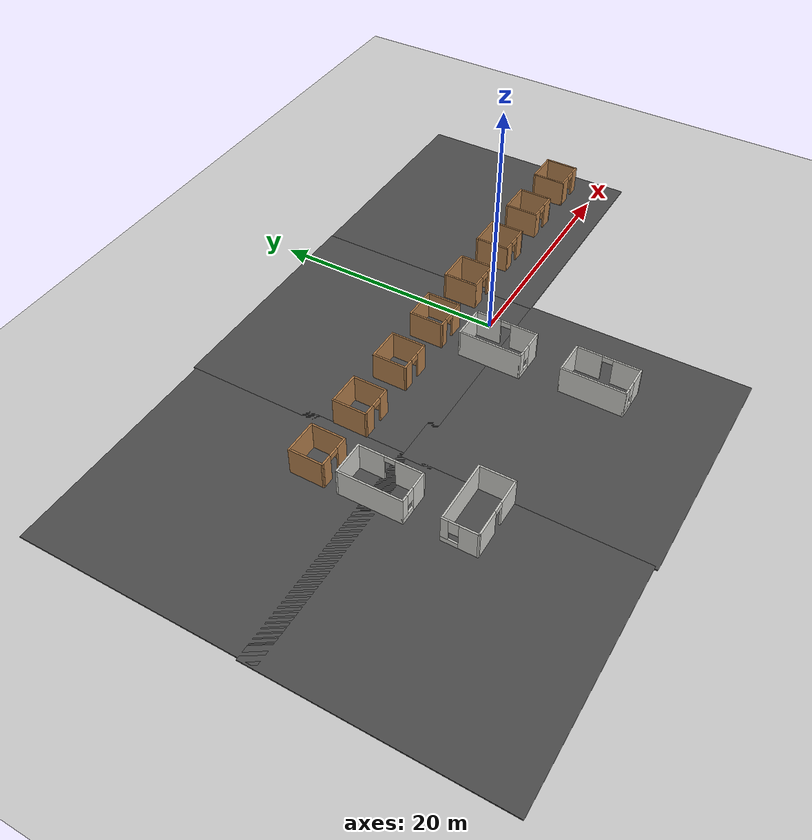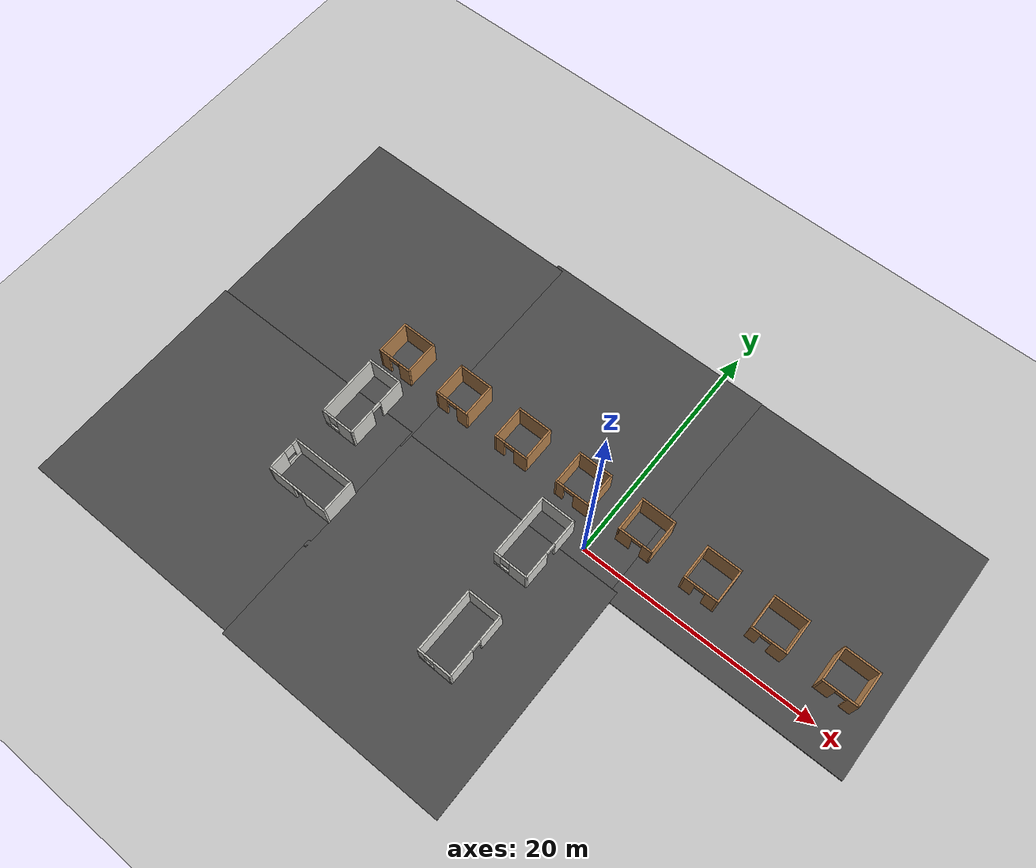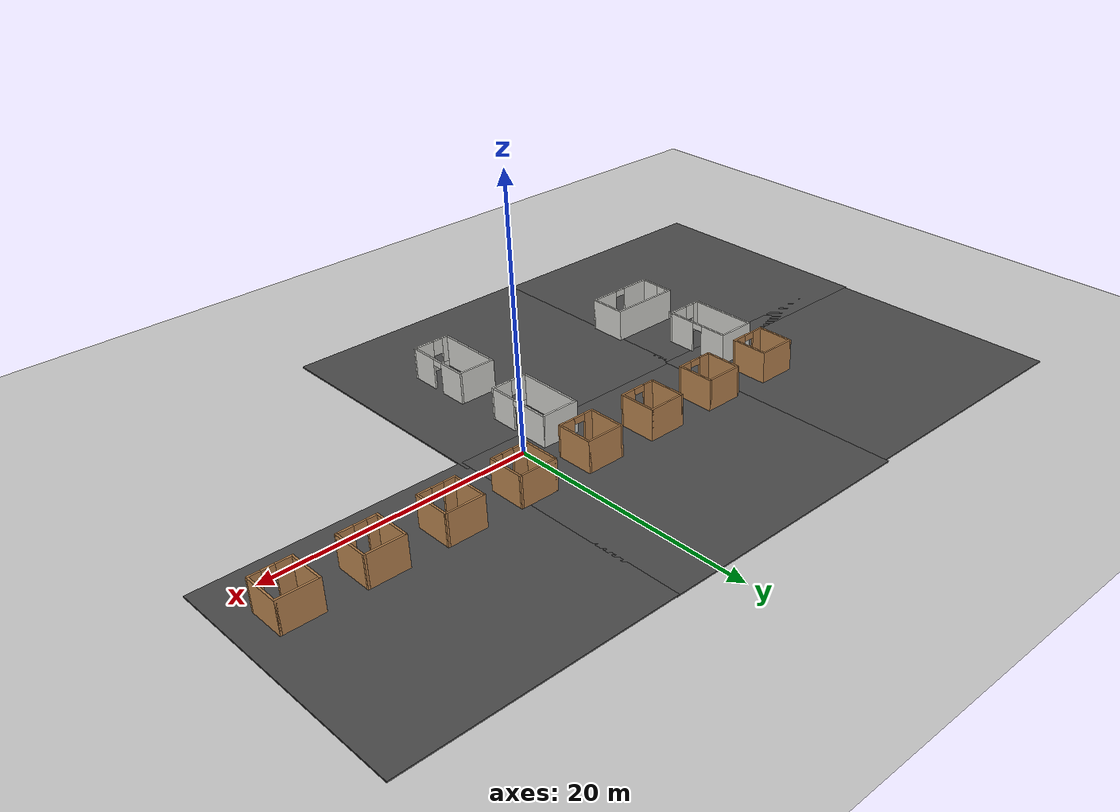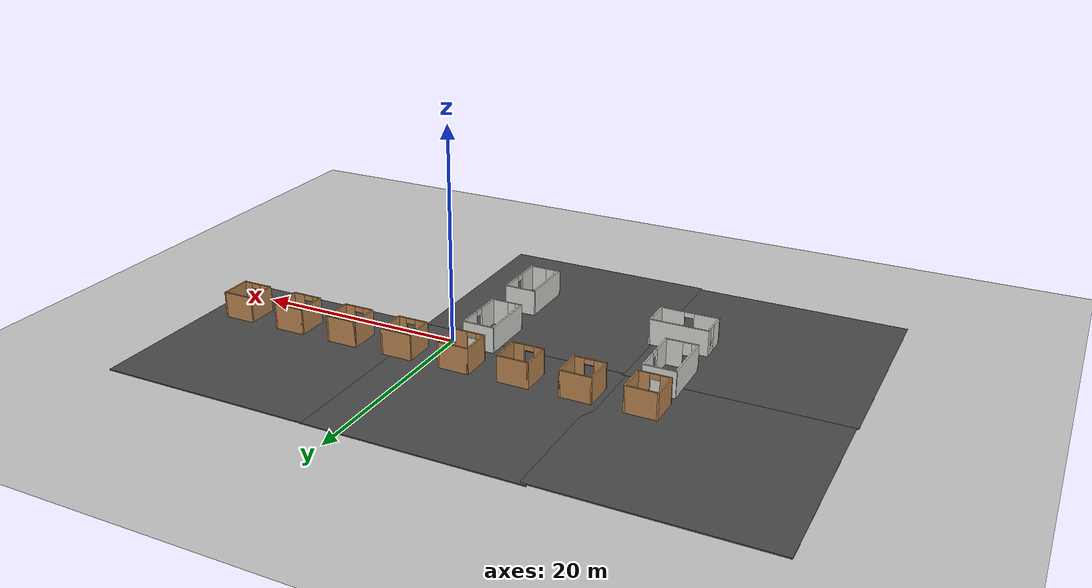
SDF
<sdf version="1.6">
 <world name="default">
  <model name="ground_plane">
   <static>1</static>
   <link name="link">
    <collision name="collision">
     <geometry><plane><normal>0 0 1</normal><size>100 100</size></plane></geometry>
     <surface>
      <contact><collide_bitmask>65535</collide_bitmask></contact>
      <friction><ode><mu>100</mu><mu2>50</mu2></ode></friction>
     </surface>
    </collision>
    <visual name="visual">
     <cast_shadows>0</cast_shadows>
     <geometry><plane><normal>0 0 1</normal><size>100 100</size></plane></geometry>
     <material>
      <script><uri>file://media/materials/scripts/gazebo.material</uri><name>Gazebo/Grey</name></script>
     </material>
    </visual>
   </link>
  </model>
  <model name="room_row_clone_clone_0">
   <pose>-0.049292 3.57608 0 0 -0 3.14</pose>
   <link name="Wall_11">
    <collision name="Wall_11_Collision">
     <geometry><box><size>3 0.15 2.5</size></box></geometry>
     <pose>0 0 1.25 0 -0 0</pose>
    </collision>
    <visual name="Wall_11_Visual">
     <pose>0 0 1.25 0 -0 0</pose>
     <geometry><box><size>3 0.15 2.5</size></box></geometry>
     <material>
      <script><uri>file://media/materials/scripts/gazebo.material</uri><name>Gazebo/Wood</name></script>
      <ambient>1 1 1 1</ambient>
     </material>
     <meta><layer>0</layer></meta>
    </visual>
    <pose>1.425 0 0 0 -0 -1.5708</pose>
   </link>
   <link name="Wall_12">
    <collision name="Wall_12_Collision">
     <geometry><box><size>3 0.15 2.5</size></box></geometry>
     <pose>0 0 1.25 0 -0 0</pose>
    </collision>
    <visual name="Wall_12_Visual">
     <pose>0 0 1.25 0 -0 0</pose>
     <geometry><box><size>3 0.15 2.5</size></box></geometry>
     <material>
      <script><uri>file://media/materials/scripts/gazebo.material</uri><name>Gazebo/Wood</name></script>
      <ambient>1 1 1 1</ambient>
     </material>
     <meta><layer>0</layer></meta>
    </visual>
    <pose>2.85 -1.425 0 0 -0 0</pose>
   </link>
   <link name="Wall_13">
    <collision name="Wall_13_Collision">
     <geometry><box><size>3 0.15 2.5</size></box></geometry>
     <pose>0 0 1.25 0 -0 0</pose>
    </collision>
    <visual name="Wall_13_Visual">
     <pose>0 0 1.25 0 -0 0</pose>
     <geometry><box><size>3 0.15 2.5</size></box></geometry>
     <material>
      <script><uri>file://media/materials/scripts/gazebo.material</uri><name>Gazebo/Wood</name></script>
      <ambient>1 1 1 1</ambient>
     </material>
     <meta><layer>0</layer></meta>
    </visual>
    <pose>4.275 0 0 0 -0 1.5708</pose>
   </link>
   <link name="Wall_14">
    <pose>2.85 1.425 0 0 -0 3.14159</pose>
    <visual name="Wall_14_Visual_0">
     <pose>-1.10207 0 1.25 0 -0 0</pose>
     <geometry><box><size>0.795857 0.15 2.5</size></box></geometry>
     <material>
      <script><uri>file://media/materials/scripts/gazebo.material</uri><name>Gazebo/Wood</name></script>
      <ambient>1 1 1 1</ambient>
     </material>
     <meta><layer>0</layer></meta>
    </visual>
    <collision name="Wall_14_Collision_0">
     <geometry><box><size>0.795857 0.15 2.5</size></box></geometry>
     <pose>-1.10207 0 1.25 0 -0 0</pose>
    </collision>
    <visual name="Wall_14_Visual_1">
     <pose>0.847928 0 1.25 0 -0 0</pose>
     <geometry><box><size>1.30414 0.15 2.5</size></box></geometry>
     <material>
      <script><uri>file://media/materials/scripts/gazebo.material</uri><name>Gazebo/Wood</name></script>
      <ambient>1 1 1 1</ambient>
     </material>
     <meta><layer>0</layer></meta>
    </visual>
    <collision name="Wall_14_Collision_1">
     <geometry><box><size>1.30414 0.15 2.5</size></box></geometry>
     <pose>0.847928 0 1.25 0 -0 0</pose>
    </collision>
    <visual name="Wall_14_Visual_2">
     <pose>-0.254143 0 2.25 0 -0 0</pose>
     <geometry><box><size>0.9 0.15 0.5</size></box></geometry>
     <material>
      <script><uri>file://media/materials/scripts/gazebo.material</uri><name>Gazebo/Wood</name></script>
      <ambient>1 1 1 1</ambient>
     </material>
     <meta><layer>0</layer></meta>
    </visual>
    <collision name="Wall_14_Collision_2">
     <geometry><box><size>0.9 0.15 0.5</size></box></geometry>
     <pose>-0.254143 0 2.25 0 -0 0</pose>
    </collision>
   </link>
   <link name="Wall_17">
    <collision name="Wall_17_Collision">
     <geometry><box><size>3 0.15 2.5</size></box></geometry>
     <pose>0 0 1.25 0 -0 0</pose>
    </collision>
    <visual name="Wall_17_Visual">
     <pose>0 0 1.25 0 -0 0</pose>
     <geometry><box><size>3 0.15 2.5</size></box></geometry>
     <material>
      <script><uri>file://media/materials/scripts/gazebo.material</uri><name>Gazebo/Wood</name></script>
      <ambient>1 1 1 1</ambient>
     </material>
     <meta><layer>0</layer></meta>
    </visual>
    <pose>7.125 0 0 0 -0 -1.5708</pose>
   </link>
   <link name="Wall_18">
    <collision name="Wall_18_Collision">
     <geometry><box><size>3 0.15 2.5</size></box></geometry>
     <pose>0 0 1.25 0 -0 0</pose>
    </collision>
    <visual name="Wall_18_Visual">
     <pose>0 0 1.25 0 -0 0</pose>
     <geometry><box><size>3 0.15 2.5</size></box></geometry>
     <material>
      <script><uri>file://media/materials/scripts/gazebo.material</uri><name>Gazebo/Wood</name></script>
      <ambient>1 1 1 1</ambient>
     </material>
     <meta><layer>0</layer></meta>
    </visual>
    <pose>8.55 -1.425 0 0 -0 0</pose>
   </link>
   <link name="Wall_19">
    <collision name="Wall_19_Collision">
     <geometry><box><size>3 0.15 2.5</size></box></geometry>
     <pose>0 0 1.25 0 -0 0</pose>
    </collision>
    <visual name="Wall_19_Visual">
     <pose>0 0 1.25 0 -0 0</pose>
     <geometry><box><size>3 0.15 2.5</size></box></geometry>
     <material>
      <script><uri>file://media/materials/scripts/gazebo.material</uri><name>Gazebo/Wood</name></script>
      <ambient>1 1 1 1</ambient>
     </material>
     <meta><layer>0</layer></meta>
    </visual>
    <pose>9.975 0 0 0 -0 1.5708</pose>
   </link>
   <link name="Wall_20">
    <pose>8.55 1.425 0 0 -0 3.14159</pose>
    <visual name="Wall_20_Visual_0">
     <pose>-1.03119 0 1.25 0 -0 0</pose>
     <geometry><box><size>0.937612 0.15 2.5</size></box></geometry>
     <material>
      <script><uri>file://media/materials/scripts/gazebo.material</uri><name>Gazebo/Wood</name></script>
      <ambient>1 1 1 1</ambient>
     </material>
     <meta><layer>0</layer></meta>
    </visual>
    <collision name="Wall_20_Collision_0">
     <geometry><box><size>0.937612 0.15 2.5</size></box></geometry>
     <pose>-1.03119 0 1.25 0 -0 0</pose>
    </collision>
    <visual name="Wall_20_Visual_1">
     <pose>0.918806 0 1.25 0 -0 0</pose>
     <geometry><box><size>1.16239 0.15 2.5</size></box></geometry>
     <material>
      <script><uri>file://media/materials/scripts/gazebo.material</uri><name>Gazebo/Wood</name></script>
      <ambient>1 1 1 1</ambient>
     </material>
     <meta><layer>0</layer></meta>
    </visual>
    <collision name="Wall_20_Collision_1">
     <geometry><box><size>1.16239 0.15 2.5</size></box></geometry>
     <pose>0.918806 0 1.25 0 -0 0</pose>
    </collision>
    <visual name="Wall_20_Visual_2">
     <pose>-0.112388 0 2.25 0 -0 0</pose>
     <geometry><box><size>0.9 0.15 0.5</size></box></geometry>
     <material>
      <script><uri>file://media/materials/scripts/gazebo.material</uri><name>Gazebo/Wood</name></script>
      <ambient>1 1 1 1</ambient>
     </material>
     <meta><layer>0</layer></meta>
    </visual>
    <collision name="Wall_20_Collision_2">
     <geometry><box><size>0.9 0.15 0.5</size></box></geometry>
     <pose>-0.112388 0 2.25 0 -0 0</pose>
    </collision>
   </link>
   <link name="Wall_23">
    <collision name="Wall_23_Collision">
     <geometry><box><size>3 0.15 2.5</size></box></geometry>
     <pose>0 0 1.25 0 -0 0</pose>
    </collision>
    <visual name="Wall_23_Visual">
     <pose>0 0 1.25 0 -0 0</pose>
     <geometry><box><size>3 0.15 2.5</size></box></geometry>
     <material>
      <script><uri>file://media/materials/scripts/gazebo.material</uri><name>Gazebo/Wood</name></script>
      <ambient>1 1 1 1</ambient>
     </material>
     <meta><layer>0</layer></meta>
    </visual>
    <pose>-7.125 0 0 0 -0 -1.5708</pose>
   </link>
   <link name="Wall_24">
    <collision name="Wall_24_Collision">
     <geometry><box><size>3 0.15 2.5</size></box></geometry>
     <pose>0 0 1.25 0 -0 0</pose>
    </collision>
    <visual name="Wall_24_Visual">
     <pose>0 0 1.25 0 -0 0</pose>
     <geometry><box><size>3 0.15 2.5</size></box></geometry>
     <material>
      <script><uri>file://media/materials/scripts/gazebo.material</uri><name>Gazebo/Wood</name></script>
      <ambient>1 1 1 1</ambient>
     </material>
     <meta><layer>0</layer></meta>
    </visual>
    <pose>-8.55 -1.425 0 0 -0 3.14159</pose>
   </link>
   <link name="Wall_25">
    <collision name="Wall_25_Collision">
     <geometry><box><size>3 0.15 2.5</size></box></geometry>
     <pose>0 0 1.25 0 -0 0</pose>
    </collision>
    <visual name="Wall_25_Visual">
     <pose>0 0 1.25 0 -0 0</pose>
     <geometry><box><size>3 0.15 2.5</size></box></geometry>
     <material>
      <script><uri>file://media/materials/scripts/gazebo.material</uri><name>Gazebo/Wood</name></script>
      <ambient>1 1 1 1</ambient>
     </material>
     <meta><layer>0</layer></meta>
    </visual>
    <pose>-9.975 0 0 0 -0 1.5708</pose>
   </link>
   <link name="Wall_26">
    <pose>-8.55 1.425 0 0 -0 0</pose>
    <visual name="Wall_26_Visual_0">
     <pose>-0.952424 0 1.25 0 -0 0</pose>
     <geometry><box><size>1.09515 0.15 2.5</size></box></geometry>
     <material>
      <script><uri>file://media/materials/scripts/gazebo.material</uri><name>Gazebo/Wood</name></script>
      <ambient>1 1 1 1</ambient>
     </material>
     <meta><layer>0</layer></meta>
    </visual>
    <collision name="Wall_26_Collision_0">
     <geometry><box><size>1.09515 0.15 2.5</size></box></geometry>
     <pose>-0.952424 0 1.25 0 -0 0</pose>
    </collision>
    <visual name="Wall_26_Visual_1">
     <pose>0.997576 0 1.25 0 -0 0</pose>
     <geometry><box><size>1.00485 0.15 2.5</size></box></geometry>
     <material>
      <script><uri>file://media/materials/scripts/gazebo.material</uri><name>Gazebo/Wood</name></script>
      <ambient>1 1 1 1</ambient>
     </material>
     <meta><layer>0</layer></meta>
    </visual>
    <collision name="Wall_26_Collision_1">
     <geometry><box><size>1.00485 0.15 2.5</size></box></geometry>
     <pose>0.997576 0 1.25 0 -0 0</pose>
    </collision>
    <visual name="Wall_26_Visual_2">
     <pose>0.045152 0 2.25 0 -0 0</pose>
     <geometry><box><size>0.9 0.15 0.5</size></box></geometry>
     <material>
      <script><uri>file://media/materials/scripts/gazebo.material</uri><name>Gazebo/Wood</name></script>
      <ambient>1 1 1 1</ambient>
     </material>
     <meta><layer>0</layer></meta>
    </visual>
    <collision name="Wall_26_Collision_2">
     <geometry><box><size>0.9 0.15 0.5</size></box></geometry>
     <pose>0.045152 0 2.25 0 -0 0</pose>
    </collision>
   </link>
   <link name="Wall_29">
    <collision name="Wall_29_Collision">
     <geometry><box><size>3 0.15 2.5</size></box></geometry>
     <pose>0 0 1.25 0 -0 0</pose>
    </collision>
    <visual name="Wall_29_Visual">
     <pose>0 0 1.25 0 -0 0</pose>
     <geometry><box><size>3 0.15 2.5</size></box></geometry>
     <material>
      <script><uri>file://media/materials/scripts/gazebo.material</uri><name>Gazebo/Wood</name></script>
      <ambient>1 1 1 1</ambient>
     </material>
     <meta><layer>0</layer></meta>
    </visual>
    <pose>-12.825 0 0 0 -0 -1.5708</pose>
   </link>
   <link name="Wall_30">
    <collision name="Wall_30_Collision">
     <geometry><box><size>3 0.15 2.5</size></box></geometry>
     <pose>0 0 1.25 0 -0 0</pose>
    </collision>
    <visual name="Wall_30_Visual">
     <pose>0 0 1.25 0 -0 0</pose>
     <geometry><box><size>3 0.15 2.5</size></box></geometry>
     <material>
      <script><uri>file://media/materials/scripts/gazebo.material</uri><name>Gazebo/Wood</name></script>
      <ambient>1 1 1 1</ambient>
     </material>
     <meta><layer>0</layer></meta>
    </visual>
    <pose>-14.25 -1.425 0 0 -0 3.14159</pose>
   </link>
   <link name="Wall_31">
    <collision name="Wall_31_Collision">
     <geometry><box><size>3 0.15 2.5</size></box></geometry>
     <pose>0 0 1.25 0 -0 0</pose>
    </collision>
    <visual name="Wall_31_Visual">
     <pose>0 0 1.25 0 -0 0</pose>
     <geometry><box><size>3 0.15 2.5</size></box></geometry>
     <material>
      <script><uri>file://media/materials/scripts/gazebo.material</uri><name>Gazebo/Wood</name></script>
      <ambient>1 1 1 1</ambient>
     </material>
     <meta><layer>0</layer></meta>
    </visual>
    <pose>-15.675 0 0 0 -0 1.5708</pose>
   </link>
   <link name="Wall_32">
    <pose>-14.25 1.425 0 0 -0 0</pose>
    <visual name="Wall_32_Visual_0">
     <pose>-0.881547 0 1.25 0 -0 0</pose>
     <geometry><box><size>1.23691 0.15 2.5</size></box></geometry>
     <material>
      <script><uri>file://media/materials/scripts/gazebo.material</uri><name>Gazebo/Wood</name></script>
      <ambient>1 1 1 1</ambient>
     </material>
     <meta><layer>0</layer></meta>
    </visual>
    <collision name="Wall_32_Collision_0">
     <geometry><box><size>1.23691 0.15 2.5</size></box></geometry>
     <pose>-0.881547 0 1.25 0 -0 0</pose>
    </collision>
    <visual name="Wall_32_Visual_1">
     <pose>1.06845 0 1.25 0 -0 0</pose>
     <geometry><box><size>0.863093 0.15 2.5</size></box></geometry>
     <material>
      <script><uri>file://media/materials/scripts/gazebo.material</uri><name>Gazebo/Wood</name></script>
      <ambient>1 1 1 1</ambient>
     </material>
     <meta><layer>0</layer></meta>
    </visual>
    <collision name="Wall_32_Collision_1">
     <geometry><box><size>0.863093 0.15 2.5</size></box></geometry>
     <pose>1.06845 0 1.25 0 -0 0</pose>
    </collision>
    <visual name="Wall_32_Visual_2">
     <pose>0.186907 0 2.25 0 -0 0</pose>
     <geometry><box><size>0.9 0.15 0.5</size></box></geometry>
     <material>
      <script><uri>file://media/materials/scripts/gazebo.material</uri><name>Gazebo/Wood</name></script>
      <ambient>1 1 1 1</ambient>
     </material>
     <meta><layer>0</layer></meta>
    </visual>
    <collision name="Wall_32_Collision_2">
     <geometry><box><size>0.9 0.15 0.5</size></box></geometry>
     <pose>0.186907 0 2.25 0 -0 0</pose>
    </collision>
   </link>
   <link name="Wall_35">
    <collision name="Wall_35_Collision">
     <geometry><box><size>3 0.15 2.5</size></box></geometry>
     <pose>0 0 1.25 0 -0 0</pose>
    </collision>
    <visual name="Wall_35_Visual">
     <pose>0 0 1.25 0 -0 0</pose>
     <geometry><box><size>3 0.15 2.5</size></box></geometry>
     <material>
      <script><uri>file://media/materials/scripts/gazebo.material</uri><name>Gazebo/Wood</name></script>
      <ambient>1 1 1 1</ambient>
     </material>
     <meta><layer>0</layer></meta>
    </visual>
    <pose>12.825 0 0 0 -0 -1.5708</pose>
   </link>
   <link name="Wall_36">
    <collision name="Wall_36_Collision">
     <geometry><box><size>3 0.15 2.5</size></box></geometry>
     <pose>0 0 1.25 0 -0 0</pose>
    </collision>
    <visual name="Wall_36_Visual">
     <pose>0 0 1.25 0 -0 0</pose>
     <geometry><box><size>3 0.15 2.5</size></box></geometry>
     <material>
      <script><uri>file://media/materials/scripts/gazebo.material</uri><name>Gazebo/Wood</name></script>
      <ambient>1 1 1 1</ambient>
     </material>
     <meta><layer>0</layer></meta>
    </visual>
    <pose>14.25 -1.425 0 0 -0 0</pose>
   </link>
   <link name="Wall_37">
    <collision name="Wall_37_Collision">
     <geometry><box><size>3 0.15 2.5</size></box></geometry>
     <pose>0 0 1.25 0 -0 0</pose>
    </collision>
    <visual name="Wall_37_Visual">
     <pose>0 0 1.25 0 -0 0</pose>
     <geometry><box><size>3 0.15 2.5</size></box></geometry>
     <material>
      <script><uri>file://media/materials/scripts/gazebo.material</uri><name>Gazebo/Wood</name></script>
      <ambient>1 1 1 1</ambient>
     </material>
     <meta><layer>0</layer></meta>
    </visual>
    <pose>15.675 0 0 0 -0 1.5708</pose>
   </link>
   <link name="Wall_38">
    <pose>14.25 1.425 0 0 -0 3.14159</pose>
    <visual name="Wall_38_Visual_0">
     <pose>-0.960316 0 1.25 0 -0 0</pose>
     <geometry><box><size>1.07937 0.15 2.5</size></box></geometry>
     <material>
      <script><uri>file://media/materials/scripts/gazebo.material</uri><name>Gazebo/Wood</name></script>
      <ambient>1 1 1 1</ambient>
     </material>
     <meta><layer>0</layer></meta>
    </visual>
    <collision name="Wall_38_Collision_0">
     <geometry><box><size>1.07937 0.15 2.5</size></box></geometry>
     <pose>-0.960316 0 1.25 0 -0 0</pose>
    </collision>
    <visual name="Wall_38_Visual_1">
     <pose>0.989684 0 1.25 0 -0 0</pose>
     <geometry><box><size>1.02063 0.15 2.5</size></box></geometry>
     <material>
      <script><uri>file://media/materials/scripts/gazebo.material</uri><name>Gazebo/Wood</name></script>
      <ambient>1 1 1 1</ambient>
     </material>
     <meta><layer>0</layer></meta>
    </visual>
    <collision name="Wall_38_Collision_1">
     <geometry><box><size>1.02063 0.15 2.5</size></box></geometry>
     <pose>0.989684 0 1.25 0 -0 0</pose>
    </collision>
    <visual name="Wall_38_Visual_2">
     <pose>0.029367 0 2.25 0 -0 0</pose>
     <geometry><box><size>0.9 0.15 0.5</size></box></geometry>
     <material>
      <script><uri>file://media/materials/scripts/gazebo.material</uri><name>Gazebo/Wood</name></script>
      <ambient>1 1 1 1</ambient>
     </material>
     <meta><layer>0</layer></meta>
    </visual>
    <collision name="Wall_38_Collision_2">
     <geometry><box><size>0.9 0.15 0.5</size></box></geometry>
     <pose>0.029367 0 2.25 0 -0 0</pose>
    </collision>
   </link>
   <link name="Wall_41">
    <collision name="Wall_41_Collision">
     <geometry><box><size>3 0.15 2.5</size></box></geometry>
     <pose>0 0 1.25 0 -0 0</pose>
    </collision>
    <visual name="Wall_41_Visual">
     <pose>0 0 1.25 0 -0 0</pose>
     <geometry><box><size>3 0.15 2.5</size></box></geometry>
     <material>
      <script><uri>file://media/materials/scripts/gazebo.material</uri><name>Gazebo/Wood</name></script>
      <ambient>1 1 1 1</ambient>
     </material>
     <meta><layer>0</layer></meta>
    </visual>
    <pose>-18.525 0 0 0 -0 -1.5708</pose>
   </link>
   <link name="Wall_42">
    <collision name="Wall_42_Collision">
     <geometry><box><size>3 0.15 2.5</size></box></geometry>
     <pose>0 0 1.25 0 -0 0</pose>
    </collision>
    <visual name="Wall_42_Visual">
     <pose>0 0 1.25 0 -0 0</pose>
     <geometry><box><size>3 0.15 2.5</size></box></geometry>
     <material>
      <script><uri>file://media/materials/scripts/gazebo.material</uri><name>Gazebo/Wood</name></script>
      <ambient>1 1 1 1</ambient>
     </material>
     <meta><layer>0</layer></meta>
    </visual>
    <pose>-19.95 -1.425 0 0 -0 3.14159</pose>
   </link>
   <link name="Wall_45">
    <pose>-19.95 1.425 0 0 -0 3.14159</pose>
    <visual name="Wall_45_Visual_0">
     <pose>-0.89308 0 1.25 0 -0 0</pose>
     <geometry><box><size>1.21384 0.15 2.5</size></box></geometry>
     <material>
      <script><uri>file://media/materials/scripts/gazebo.material</uri><name>Gazebo/Wood</name></script>
      <ambient>1 1 1 1</ambient>
     </material>
     <meta><layer>0</layer></meta>
    </visual>
    <collision name="Wall_45_Collision_0">
     <geometry><box><size>1.21384 0.15 2.5</size></box></geometry>
     <pose>-0.89308 0 1.25 0 -0 0</pose>
    </collision>
    <visual name="Wall_45_Visual_1">
     <pose>1.05692 0 1.25 0 -0 0</pose>
     <geometry><box><size>0.886161 0.15 2.5</size></box></geometry>
     <material>
      <script><uri>file://media/materials/scripts/gazebo.material</uri><name>Gazebo/Wood</name></script>
      <ambient>1 1 1 1</ambient>
     </material>
     <meta><layer>0</layer></meta>
    </visual>
    <collision name="Wall_45_Collision_1">
     <geometry><box><size>0.886161 0.15 2.5</size></box></geometry>
     <pose>1.05692 0 1.25 0 -0 0</pose>
    </collision>
    <visual name="Wall_45_Visual_2">
     <pose>0.163839 0 2.25 0 -0 0</pose>
     <geometry><box><size>0.9 0.15 0.5</size></box></geometry>
     <material>
      <script><uri>file://media/materials/scripts/gazebo.material</uri><name>Gazebo/Wood</name></script>
      <ambient>1 1 1 1</ambient>
     </material>
     <meta><layer>0</layer></meta>
    </visual>
    <collision name="Wall_45_Collision_2">
     <geometry><box><size>0.9 0.15 0.5</size></box></geometry>
     <pose>0.163839 0 2.25 0 -0 0</pose>
    </collision>
   </link>
   <link name="Wall_46">
    <collision name="Wall_46_Collision">
     <geometry><box><size>3 0.15 2.5</size></box></geometry>
     <pose>0 0 1.25 0 -0 0</pose>
    </collision>
    <visual name="Wall_46_Visual">
     <pose>0 0 1.25 0 -0 0</pose>
     <geometry><box><size>3 0.15 2.5</size></box></geometry>
     <material>
      <script><uri>file://media/materials/scripts/gazebo.material</uri><name>Gazebo/Wood</name></script>
      <ambient>1 1 1 1</ambient>
     </material>
     <meta><layer>0</layer></meta>
    </visual>
    <pose>-21.375 0 0 0 -0 -1.5708</pose>
   </link>
   <link name="Wall_49">
    <collision name="Wall_49_Collision">
     <geometry><box><size>3 0.15 2.5</size></box></geometry>
     <pose>0 0 1.25 0 -0 0</pose>
    </collision>
    <visual name="Wall_49_Visual">
     <pose>0 0 1.25 0 -0 0</pose>
     <geometry><box><size>3 0.15 2.5</size></box></geometry>
     <material>
      <script><uri>file://media/materials/scripts/gazebo.material</uri><name>Gazebo/Wood</name></script>
      <ambient>1 1 1 1</ambient>
     </material>
     <meta><layer>0</layer></meta>
    </visual>
    <pose>18.525 0 0 0 -0 -1.5708</pose>
   </link>
   <link name="Wall_5">
    <pose>-2.85 1.425 0 0 -0 0</pose>
    <visual name="Wall_5_Visual_0">
     <pose>-1.05848 0 1.25 0 -0 0</pose>
     <geometry><box><size>0.883039 0.15 2.5</size></box></geometry>
     <material>
      <script><uri>file://media/materials/scripts/gazebo.material</uri><name>Gazebo/Wood</name></script>
      <ambient>1 1 1 1</ambient>
     </material>
     <meta><layer>0</layer></meta>
    </visual>
    <collision name="Wall_5_Collision_0">
     <geometry><box><size>0.883039 0.15 2.5</size></box></geometry>
     <pose>-1.05848 0 1.25 0 -0 0</pose>
    </collision>
    <visual name="Wall_5_Visual_1">
     <pose>0.891519 0 1.25 0 -0 0</pose>
     <geometry><box><size>1.21696 0.15 2.5</size></box></geometry>
     <material>
      <script><uri>file://media/materials/scripts/gazebo.material</uri><name>Gazebo/Wood</name></script>
      <ambient>1 1 1 1</ambient>
     </material>
     <meta><layer>0</layer></meta>
    </visual>
    <collision name="Wall_5_Collision_1">
     <geometry><box><size>1.21696 0.15 2.5</size></box></geometry>
     <pose>0.891519 0 1.25 0 -0 0</pose>
    </collision>
    <visual name="Wall_5_Visual_2">
     <pose>-0.166961 0 2.25 0 -0 0</pose>
     <geometry><box><size>0.9 0.15 0.5</size></box></geometry>
     <material>
      <script><uri>file://media/materials/scripts/gazebo.material</uri><name>Gazebo/Wood</name></script>
      <ambient>1 1 1 1</ambient>
     </material>
     <meta><layer>0</layer></meta>
    </visual>
    <collision name="Wall_5_Collision_2">
     <geometry><box><size>0.9 0.15 0.5</size></box></geometry>
     <pose>-0.166961 0 2.25 0 -0 0</pose>
    </collision>
   </link>
   <link name="Wall_51">
    <collision name="Wall_51_Collision">
     <geometry><box><size>3 0.15 2.5</size></box></geometry>
     <pose>0 0 1.25 0 -0 0</pose>
    </collision>
    <visual name="Wall_51_Visual">
     <pose>0 0 1.25 0 -0 0</pose>
     <geometry><box><size>3 0.15 2.5</size></box></geometry>
     <material>
      <script><uri>file://media/materials/scripts/gazebo.material</uri><name>Gazebo/Wood</name></script>
      <ambient>1 1 1 1</ambient>
     </material>
     <meta><layer>0</layer></meta>
    </visual>
    <pose>19.95 -1.425 0 0 -0 0</pose>
   </link>
   <link name="Wall_53">
    <collision name="Wall_53_Collision">
     <geometry><box><size>3 0.15 2.5</size></box></geometry>
     <pose>0 0 1.25 0 -0 0</pose>
    </collision>
    <visual name="Wall_53_Visual">
     <pose>0 0 1.25 0 -0 0</pose>
     <geometry><box><size>3 0.15 2.5</size></box></geometry>
     <material>
      <script><uri>file://media/materials/scripts/gazebo.material</uri><name>Gazebo/Wood</name></script>
      <ambient>1 1 1 1</ambient>
     </material>
     <meta><layer>0</layer></meta>
    </visual>
    <pose>21.375 0 0 0 -0 1.5708</pose>
   </link>
   <link name="Wall_54">
    <pose>19.95 1.425 0 0 -0 3.14159</pose>
    <visual name="Wall_54_Visual_0">
     <pose>-0.994975 0 1.25 0 -0 0</pose>
     <geometry><box><size>1.01005 0.15 2.5</size></box></geometry>
     <material>
      <script><uri>file://media/materials/scripts/gazebo.material</uri><name>Gazebo/Wood</name></script>
      <ambient>1 1 1 1</ambient>
     </material>
     <meta><layer>0</layer></meta>
    </visual>
    <collision name="Wall_54_Collision_0">
     <geometry><box><size>1.01005 0.15 2.5</size></box></geometry>
     <pose>-0.994975 0 1.25 0 -0 0</pose>
    </collision>
    <visual name="Wall_54_Visual_1">
     <pose>0.955025 0 1.25 0 -0 0</pose>
     <geometry><box><size>1.08995 0.15 2.5</size></box></geometry>
     <material>
      <script><uri>file://media/materials/scripts/gazebo.material</uri><name>Gazebo/Wood</name></script>
      <ambient>1 1 1 1</ambient>
     </material>
     <meta><layer>0</layer></meta>
    </visual>
    <collision name="Wall_54_Collision_1">
     <geometry><box><size>1.08995 0.15 2.5</size></box></geometry>
     <pose>0.955025 0 1.25 0 -0 0</pose>
    </collision>
    <visual name="Wall_54_Visual_2">
     <pose>-0.039949 0 2.25 0 -0 0</pose>
     <geometry><box><size>0.9 0.15 0.5</size></box></geometry>
     <material>
      <script><uri>file://media/materials/scripts/gazebo.material</uri><name>Gazebo/Wood</name></script>
      <ambient>1 1 1 1</ambient>
     </material>
     <meta><layer>0</layer></meta>
    </visual>
    <collision name="Wall_54_Collision_2">
     <geometry><box><size>0.9 0.15 0.5</size></box></geometry>
     <pose>-0.039949 0 2.25 0 -0 0</pose>
    </collision>
   </link>
   <link name="Wall_6">
    <collision name="Wall_6_Collision">
     <geometry><box><size>3 0.15 2.5</size></box></geometry>
     <pose>0 0 1.25 0 -0 0</pose>
    </collision>
    <visual name="Wall_6_Visual">
     <pose>0 0 1.25 0 -0 0</pose>
     <geometry><box><size>3 0.15 2.5</size></box></geometry>
     <material>
      <script><uri>file://media/materials/scripts/gazebo.material</uri><name>Gazebo/Wood</name></script>
      <ambient>1 1 1 1</ambient>
     </material>
     <meta><layer>0</layer></meta>
    </visual>
    <pose>-1.425 0 0 0 -0 -1.5708</pose>
   </link>
   <link name="Wall_7">
    <collision name="Wall_7_Collision">
     <geometry><box><size>3 0.15 2.5</size></box></geometry>
     <pose>0 0 1.25 0 -0 0</pose>
    </collision>
    <visual name="Wall_7_Visual">
     <pose>0 0 1.25 0 -0 0</pose>
     <geometry><box><size>3 0.15 2.5</size></box></geometry>
     <material>
      <script><uri>file://media/materials/scripts/gazebo.material</uri><name>Gazebo/Wood</name></script>
      <ambient>1 1 1 1</ambient>
     </material>
     <meta><layer>0</layer></meta>
    </visual>
    <pose>-2.85 -1.425 0 0 -0 3.14159</pose>
   </link>
   <link name="Wall_8">
    <collision name="Wall_8_Collision">
     <geometry><box><size>3 0.15 2.5</size></box></geometry>
     <pose>0 0 1.25 0 -0 0</pose>
    </collision>
    <visual name="Wall_8_Visual">
     <pose>0 0 1.25 0 -0 0</pose>
     <geometry><box><size>3 0.15 2.5</size></box></geometry>
     <material>
      <script><uri>file://media/materials/scripts/gazebo.material</uri><name>Gazebo/Wood</name></script>
      <ambient>1 1 1 1</ambient>
     </material>
     <meta><layer>0</layer></meta>
    </visual>
    <pose>-4.275 0 0 0 -0 1.5708</pose>
   </link>
   <static>1</static>
  </model>
  <model name="whitehouse_clone">
   <pose>-18.5907 -8.74999 0 0 -0 0</pose>
   <link name="Wall_62">
    <collision name="Wall_62_Collision">
     <geometry><box><size>5.5 0.15 2.5</size></box></geometry>
     <pose>0 0 1.25 0 -0 0</pose>
    </collision>
    <visual name="Wall_62_Visual">
     <pose>0 0 1.25 0 -0 0</pose>
     <geometry><box><size>5.5 0.15 2.5</size></box></geometry>
     <material>
      <script><uri>file://media/materials/scripts/gazebo.material</uri><name>Gazebo/CeilingTiled</name></script>
      <ambient>1 1 1 1</ambient>
     </material>
     <meta><layer>0</layer></meta>
    </visual>
    <pose>-0 1.425 0 0 -0 0</pose>
   </link>
   <link name="Wall_63">
    <collision name="Wall_63_Collision">
     <geometry><box><size>3 0.15 2.5</size></box></geometry>
     <pose>0 0 1.25 0 -0 0</pose>
    </collision>
    <visual name="Wall_63_Visual">
     <pose>0 0 1.25 0 -0 0</pose>
     <geometry><box><size>3 0.15 2.5</size></box></geometry>
     <material>
      <script><uri>file://media/materials/scripts/gazebo.material</uri><name>Gazebo/CeilingTiled</name></script>
      <ambient>1 1 1 1</ambient>
     </material>
     <meta><layer>0</layer></meta>
    </visual>
    <pose>2.675 0 0 0 -0 -1.5708</pose>
   </link>
   <link name="Wall_64">
    <pose>-0 -1.425 0 0 -0 3.14159</pose>
    <visual name="Wall_64_Visual_0">
     <pose>-1.62255 0 1.25 0 -0 0</pose>
     <geometry><box><size>2.25489 0.15 2.5</size></box></geometry>
     <material>
      <script><uri>file://media/materials/scripts/gazebo.material</uri><name>Gazebo/CeilingTiled</name></script>
      <ambient>1 1 1 1</ambient>
     </material>
     <meta><layer>0</layer></meta>
    </visual>
    <collision name="Wall_64_Collision_0">
     <geometry><box><size>2.25489 0.15 2.5</size></box></geometry>
     <pose>-1.62255 0 1.25 0 -0 0</pose>
    </collision>
    <visual name="Wall_64_Visual_1">
     <pose>1.57745 0 1.25 0 -0 0</pose>
     <geometry><box><size>2.34511 0.15 2.5</size></box></geometry>
     <material>
      <script><uri>file://media/materials/scripts/gazebo.material</uri><name>Gazebo/CeilingTiled</name></script>
      <ambient>1 1 1 1</ambient>
     </material>
     <meta><layer>0</layer></meta>
    </visual>
    <collision name="Wall_64_Collision_1">
     <geometry><box><size>2.34511 0.15 2.5</size></box></geometry>
     <pose>1.57745 0 1.25 0 -0 0</pose>
    </collision>
    <visual name="Wall_64_Visual_2">
     <pose>-0.045105 0 2.25 0 -0 0</pose>
     <geometry><box><size>0.9 0.15 0.5</size></box></geometry>
     <material>
      <script><uri>file://media/materials/scripts/gazebo.material</uri><name>Gazebo/CeilingTiled</name></script>
      <ambient>1 1 1 1</ambient>
     </material>
     <meta><layer>0</layer></meta>
    </visual>
    <collision name="Wall_64_Collision_2">
     <geometry><box><size>0.9 0.15 0.5</size></box></geometry>
     <pose>-0.045105 0 2.25 0 -0 0</pose>
    </collision>
   </link>
   <link name="Wall_65">
    <pose>-2.675 0 0 0 -0 1.5708</pose>
    <visual name="Wall_65_Visual_0">
     <pose>-0.700468 0 1.25 0 -0 0</pose>
     <geometry><box><size>1.59906 0.15 2.5</size></box></geometry>
     <material>
      <script><uri>file://media/materials/scripts/gazebo.material</uri><name>Gazebo/CeilingTiled</name></script>
      <ambient>1 1 1 1</ambient>
     </material>
     <meta><layer>0</layer></meta>
    </visual>
    <collision name="Wall_65_Collision_0">
     <geometry><box><size>1.59906 0.15 2.5</size></box></geometry>
     <pose>-0.700468 0 1.25 0 -0 0</pose>
    </collision>
    <visual name="Wall_65_Visual_1">
     <pose>0.799532 0 0.25 0 -0 0</pose>
     <geometry><box><size>1.40094 0.15 0.5</size></box></geometry>
     <material>
      <script><uri>file://media/materials/scripts/gazebo.material</uri><name>Gazebo/CeilingTiled</name></script>
      <ambient>1 1 1 1</ambient>
     </material>
     <meta><layer>0</layer></meta>
    </visual>
    <collision name="Wall_65_Collision_1">
     <geometry><box><size>1.40094 0.15 0.5</size></box></geometry>
     <pose>0.799532 0 0.25 0 -0 0</pose>
    </collision>
    <visual name="Wall_65_Visual_2">
     <pose>1.19953 0 1.5 0 -0 0</pose>
     <geometry><box><size>0.600936 0.15 2</size></box></geometry>
     <material>
      <script><uri>file://media/materials/scripts/gazebo.material</uri><name>Gazebo/CeilingTiled</name></script>
      <ambient>1 1 1 1</ambient>
     </material>
     <meta><layer>0</layer></meta>
    </visual>
    <collision name="Wall_65_Collision_2">
     <geometry><box><size>0.600936 0.15 2</size></box></geometry>
     <pose>1.19953 0 1.5 0 -0 0</pose>
    </collision>
    <visual name="Wall_65_Visual_3">
     <pose>0.499064 0 1.9 0 -0 0</pose>
     <geometry><box><size>0.8 0.15 1.2</size></box></geometry>
     <material>
      <script><uri>file://media/materials/scripts/gazebo.material</uri><name>Gazebo/CeilingTiled</name></script>
      <ambient>1 1 1 1</ambient>
     </material>
     <meta><layer>0</layer></meta>
    </visual>
    <collision name="Wall_65_Collision_3">
     <geometry><box><size>0.8 0.15 1.2</size></box></geometry>
     <pose>0.499064 0 1.9 0 -0 0</pose>
    </collision>
   </link>
   <static>1</static>
  </model>
  <model name="whitehouse_clone_0_clone">
   <pose>-2.92002 -2.18298 0 0 -0 1.56409</pose>
   <link name="Wall_62">
    <collision name="Wall_62_Collision">
     <geometry><box><size>5.5 0.15 2.5</size></box></geometry>
     <pose>0 0 1.25 0 -0 0</pose>
    </collision>
    <visual name="Wall_62_Visual">
     <pose>0 0 1.25 0 -0 0</pose>
     <geometry><box><size>5.5 0.15 2.5</size></box></geometry>
     <material>
      <script><uri>file://media/materials/scripts/gazebo.material</uri><name>Gazebo/CeilingTiled</name></script>
      <ambient>1 1 1 1</ambient>
     </material>
     <meta><layer>0</layer></meta>
    </visual>
    <pose>-0 1.425 0 0 -0 0</pose>
   </link>
   <link name="Wall_63">
    <collision name="Wall_63_Collision">
     <geometry><box><size>3 0.15 2.5</size></box></geometry>
     <pose>0 0 1.25 0 -0 0</pose>
    </collision>
    <visual name="Wall_63_Visual">
     <pose>0 0 1.25 0 -0 0</pose>
     <geometry><box><size>3 0.15 2.5</size></box></geometry>
     <material>
      <script><uri>file://media/materials/scripts/gazebo.material</uri><name>Gazebo/CeilingTiled</name></script>
      <ambient>1 1 1 1</ambient>
     </material>
     <meta><layer>0</layer></meta>
    </visual>
    <pose>2.675 0 0 0 -0 -1.5708</pose>
   </link>
   <link name="Wall_64">
    <pose>-0 -1.425 0 0 -0 3.14159</pose>
    <visual name="Wall_64_Visual_0">
     <pose>-1.62255 0 1.25 0 -0 0</pose>
     <geometry><box><size>2.25489 0.15 2.5</size></box></geometry>
     <material>
      <script><uri>file://media/materials/scripts/gazebo.material</uri><name>Gazebo/CeilingTiled</name></script>
      <ambient>1 1 1 1</ambient>
     </material>
     <meta><layer>0</layer></meta>
    </visual>
    <collision name="Wall_64_Collision_0">
     <geometry><box><size>2.25489 0.15 2.5</size></box></geometry>
     <pose>-1.62255 0 1.25 0 -0 0</pose>
    </collision>
    <visual name="Wall_64_Visual_1">
     <pose>1.57745 0 1.25 0 -0 0</pose>
     <geometry><box><size>2.34511 0.15 2.5</size></box></geometry>
     <material>
      <script><uri>file://media/materials/scripts/gazebo.material</uri><name>Gazebo/CeilingTiled</name></script>
      <ambient>1 1 1 1</ambient>
     </material>
     <meta><layer>0</layer></meta>
    </visual>
    <collision name="Wall_64_Collision_1">
     <geometry><box><size>2.34511 0.15 2.5</size></box></geometry>
     <pose>1.57745 0 1.25 0 -0 0</pose>
    </collision>
    <visual name="Wall_64_Visual_2">
     <pose>-0.045105 0 2.25 0 -0 0</pose>
     <geometry><box><size>0.9 0.15 0.5</size></box></geometry>
     <material>
      <script><uri>file://media/materials/scripts/gazebo.material</uri><name>Gazebo/CeilingTiled</name></script>
      <ambient>1 1 1 1</ambient>
     </material>
     <meta><layer>0</layer></meta>
    </visual>
    <collision name="Wall_64_Collision_2">
     <geometry><box><size>0.9 0.15 0.5</size></box></geometry>
     <pose>-0.045105 0 2.25 0 -0 0</pose>
    </collision>
   </link>
   <link name="Wall_65">
    <pose>-2.675 0 0 0 -0 1.5708</pose>
    <visual name="Wall_65_Visual_0">
     <pose>-0.700468 0 1.25 0 -0 0</pose>
     <geometry><box><size>1.59906 0.15 2.5</size></box></geometry>
     <material>
      <script><uri>file://media/materials/scripts/gazebo.material</uri><name>Gazebo/CeilingTiled</name></script>
      <ambient>1 1 1 1</ambient>
     </material>
     <meta><layer>0</layer></meta>
    </visual>
    <collision name="Wall_65_Collision_0">
     <geometry><box><size>1.59906 0.15 2.5</size></box></geometry>
     <pose>-0.700468 0 1.25 0 -0 0</pose>
    </collision>
    <visual name="Wall_65_Visual_1">
     <pose>0.799532 0 0.25 0 -0 0</pose>
     <geometry><box><size>1.40094 0.15 0.5</size></box></geometry>
     <material>
      <script><uri>file://media/materials/scripts/gazebo.material</uri><name>Gazebo/CeilingTiled</name></script>
      <ambient>1 1 1 1</ambient>
     </material>
     <meta><layer>0</layer></meta>
    </visual>
    <collision name="Wall_65_Collision_1">
     <geometry><box><size>1.40094 0.15 0.5</size></box></geometry>
     <pose>0.799532 0 0.25 0 -0 0</pose>
    </collision>
    <visual name="Wall_65_Visual_2">
     <pose>1.19953 0 1.5 0 -0 0</pose>
     <geometry><box><size>0.600936 0.15 2</size></box></geometry>
     <material>
      <script><uri>file://media/materials/scripts/gazebo.material</uri><name>Gazebo/CeilingTiled</name></script>
      <ambient>1 1 1 1</ambient>
     </material>
     <meta><layer>0</layer></meta>
    </visual>
    <collision name="Wall_65_Collision_2">
     <geometry><box><size>0.600936 0.15 2</size></box></geometry>
     <pose>1.19953 0 1.5 0 -0 0</pose>
    </collision>
    <visual name="Wall_65_Visual_3">
     <pose>0.499064 0 1.9 0 -0 0</pose>
     <geometry><box><size>0.8 0.15 1.2</size></box></geometry>
     <material>
      <script><uri>file://media/materials/scripts/gazebo.material</uri><name>Gazebo/CeilingTiled</name></script>
      <ambient>1 1 1 1</ambient>
     </material>
     <meta><layer>0</layer></meta>
    </visual>
    <collision name="Wall_65_Collision_3">
     <geometry><box><size>0.8 0.15 1.2</size></box></geometry>
     <pose>0.499064 0 1.9 0 -0 0</pose>
    </collision>
   </link>
   <static>1</static>
  </model>
  <model name="whitehouse_clone_0_clone_clone">
   <pose>-2.63118 -10.8319 0 0 -0 1.56409</pose>
   <link name="Wall_62">
    <collision name="Wall_62_Collision">
     <geometry><box><size>5.5 0.15 2.5</size></box></geometry>
     <pose>0 0 1.25 0 -0 0</pose>
    </collision>
    <visual name="Wall_62_Visual">
     <pose>0 0 1.25 0 -0 0</pose>
     <geometry><box><size>5.5 0.15 2.5</size></box></geometry>
     <material>
      <script><uri>file://media/materials/scripts/gazebo.material</uri><name>Gazebo/CeilingTiled</name></script>
      <ambient>1 1 1 1</ambient>
     </material>
     <meta><layer>0</layer></meta>
    </visual>
    <pose>-0 1.425 0 0 -0 0</pose>
   </link>
   <link name="Wall_63">
    <collision name="Wall_63_Collision">
     <geometry><box><size>3 0.15 2.5</size></box></geometry>
     <pose>0 0 1.25 0 -0 0</pose>
    </collision>
    <visual name="Wall_63_Visual">
     <pose>0 0 1.25 0 -0 0</pose>
     <geometry><box><size>3 0.15 2.5</size></box></geometry>
     <material>
      <script><uri>file://media/materials/scripts/gazebo.material</uri><name>Gazebo/CeilingTiled</name></script>
      <ambient>1 1 1 1</ambient>
     </material>
     <meta><layer>0</layer></meta>
    </visual>
    <pose>2.675 0 0 0 -0 -1.5708</pose>
   </link>
   <link name="Wall_64">
    <pose>-0 -1.425 0 0 -0 3.14159</pose>
    <visual name="Wall_64_Visual_0">
     <pose>-1.62255 0 1.25 0 -0 0</pose>
     <geometry><box><size>2.25489 0.15 2.5</size></box></geometry>
     <material>
      <script><uri>file://media/materials/scripts/gazebo.material</uri><name>Gazebo/CeilingTiled</name></script>
      <ambient>1 1 1 1</ambient>
     </material>
     <meta><layer>0</layer></meta>
    </visual>
    <collision name="Wall_64_Collision_0">
     <geometry><box><size>2.25489 0.15 2.5</size></box></geometry>
     <pose>-1.62255 0 1.25 0 -0 0</pose>
    </collision>
    <visual name="Wall_64_Visual_1">
     <pose>1.57745 0 1.25 0 -0 0</pose>
     <geometry><box><size>2.34511 0.15 2.5</size></box></geometry>
     <material>
      <script><uri>file://media/materials/scripts/gazebo.material</uri><name>Gazebo/CeilingTiled</name></script>
      <ambient>1 1 1 1</ambient>
     </material>
     <meta><layer>0</layer></meta>
    </visual>
    <collision name="Wall_64_Collision_1">
     <geometry><box><size>2.34511 0.15 2.5</size></box></geometry>
     <pose>1.57745 0 1.25 0 -0 0</pose>
    </collision>
    <visual name="Wall_64_Visual_2">
     <pose>-0.045105 0 2.25 0 -0 0</pose>
     <geometry><box><size>0.9 0.15 0.5</size></box></geometry>
     <material>
      <script><uri>file://media/materials/scripts/gazebo.material</uri><name>Gazebo/CeilingTiled</name></script>
      <ambient>1 1 1 1</ambient>
     </material>
     <meta><layer>0</layer></meta>
    </visual>
    <collision name="Wall_64_Collision_2">
     <geometry><box><size>0.9 0.15 0.5</size></box></geometry>
     <pose>-0.045105 0 2.25 0 -0 0</pose>
    </collision>
   </link>
   <link name="Wall_65">
    <pose>-2.675 0 0 0 -0 1.5708</pose>
    <visual name="Wall_65_Visual_0">
     <pose>-0.700468 0 1.25 0 -0 0</pose>
     <geometry><box><size>1.59906 0.15 2.5</size></box></geometry>
     <material>
      <script><uri>file://media/materials/scripts/gazebo.material</uri><name>Gazebo/CeilingTiled</name></script>
      <ambient>1 1 1 1</ambient>
     </material>
     <meta><layer>0</layer></meta>
    </visual>
    <collision name="Wall_65_Collision_0">
     <geometry><box><size>1.59906 0.15 2.5</size></box></geometry>
     <pose>-0.700468 0 1.25 0 -0 0</pose>
    </collision>
    <visual name="Wall_65_Visual_1">
     <pose>0.799532 0 0.25 0 -0 0</pose>
     <geometry><box><size>1.40094 0.15 0.5</size></box></geometry>
     <material>
      <script><uri>file://media/materials/scripts/gazebo.material</uri><name>Gazebo/CeilingTiled</name></script>
      <ambient>1 1 1 1</ambient>
     </material>
     <meta><layer>0</layer></meta>
    </visual>
    <collision name="Wall_65_Collision_1">
     <geometry><box><size>1.40094 0.15 0.5</size></box></geometry>
     <pose>0.799532 0 0.25 0 -0 0</pose>
    </collision>
    <visual name="Wall_65_Visual_2">
     <pose>1.19953 0 1.5 0 -0 0</pose>
     <geometry><box><size>0.600936 0.15 2</size></box></geometry>
     <material>
      <script><uri>file://media/materials/scripts/gazebo.material</uri><name>Gazebo/CeilingTiled</name></script>
      <ambient>1 1 1 1</ambient>
     </material>
     <meta><layer>0</layer></meta>
    </visual>
    <collision name="Wall_65_Collision_2">
     <geometry><box><size>0.600936 0.15 2</size></box></geometry>
     <pose>1.19953 0 1.5 0 -0 0</pose>
    </collision>
    <visual name="Wall_65_Visual_3">
     <pose>0.499064 0 1.9 0 -0 0</pose>
     <geometry><box><size>0.8 0.15 1.2</size></box></geometry>
     <material>
      <script><uri>file://media/materials/scripts/gazebo.material</uri><name>Gazebo/CeilingTiled</name></script>
      <ambient>1 1 1 1</ambient>
     </material>
     <meta><layer>0</layer></meta>
    </visual>
    <collision name="Wall_65_Collision_3">
     <geometry><box><size>0.8 0.15 1.2</size></box></geometry>
     <pose>0.499064 0 1.9 0 -0 0</pose>
    </collision>
   </link>
   <static>1</static>
  </model>
  <model name="whitehouse_clone_clone">
   <pose>-19.9593 -1.66008 0 0 -0 1.57365</pose>
   <link name="Wall_62">
    <collision name="Wall_62_Collision">
     <geometry><box><size>5.5 0.15 2.5</size></box></geometry>
     <pose>0 0 1.25 0 -0 0</pose>
    </collision>
    <visual name="Wall_62_Visual">
     <pose>0 0 1.25 0 -0 0</pose>
     <geometry><box><size>5.5 0.15 2.5</size></box></geometry>
     <material>
      <script><uri>file://media/materials/scripts/gazebo.material</uri><name>Gazebo/CeilingTiled</name></script>
      <ambient>1 1 1 1</ambient>
     </material>
     <meta><layer>0</layer></meta>
    </visual>
    <pose>-0 1.425 0 0 -0 0</pose>
   </link>
   <link name="Wall_63">
    <collision name="Wall_63_Collision">
     <geometry><box><size>3 0.15 2.5</size></box></geometry>
     <pose>0 0 1.25 0 -0 0</pose>
    </collision>
    <visual name="Wall_63_Visual">
     <pose>0 0 1.25 0 -0 0</pose>
     <geometry><box><size>3 0.15 2.5</size></box></geometry>
     <material>
      <script><uri>file://media/materials/scripts/gazebo.material</uri><name>Gazebo/CeilingTiled</name></script>
      <ambient>1 1 1 1</ambient>
     </material>
     <meta><layer>0</layer></meta>
    </visual>
    <pose>2.675 0 0 0 -0 -1.5708</pose>
   </link>
   <link name="Wall_64">
    <pose>-0 -1.425 0 0 -0 3.14159</pose>
    <visual name="Wall_64_Visual_0">
     <pose>-1.62255 0 1.25 0 -0 0</pose>
     <geometry><box><size>2.25489 0.15 2.5</size></box></geometry>
     <material>
      <script><uri>file://media/materials/scripts/gazebo.material</uri><name>Gazebo/CeilingTiled</name></script>
      <ambient>1 1 1 1</ambient>
     </material>
     <meta><layer>0</layer></meta>
    </visual>
    <collision name="Wall_64_Collision_0">
     <geometry><box><size>2.25489 0.15 2.5</size></box></geometry>
     <pose>-1.62255 0 1.25 0 -0 0</pose>
    </collision>
    <visual name="Wall_64_Visual_1">
     <pose>1.57745 0 1.25 0 -0 0</pose>
     <geometry><box><size>2.34511 0.15 2.5</size></box></geometry>
     <material>
      <script><uri>file://media/materials/scripts/gazebo.material</uri><name>Gazebo/CeilingTiled</name></script>
      <ambient>1 1 1 1</ambient>
     </material>
     <meta><layer>0</layer></meta>
    </visual>
    <collision name="Wall_64_Collision_1">
     <geometry><box><size>2.34511 0.15 2.5</size></box></geometry>
     <pose>1.57745 0 1.25 0 -0 0</pose>
    </collision>
    <visual name="Wall_64_Visual_2">
     <pose>-0.045105 0 2.25 0 -0 0</pose>
     <geometry><box><size>0.9 0.15 0.5</size></box></geometry>
     <material>
      <script><uri>file://media/materials/scripts/gazebo.material</uri><name>Gazebo/CeilingTiled</name></script>
      <ambient>1 1 1 1</ambient>
     </material>
     <meta><layer>0</layer></meta>
    </visual>
    <collision name="Wall_64_Collision_2">
     <geometry><box><size>0.9 0.15 0.5</size></box></geometry>
     <pose>-0.045105 0 2.25 0 -0 0</pose>
    </collision>
   </link>
   <link name="Wall_65">
    <pose>-2.675 0 0 0 -0 1.5708</pose>
    <visual name="Wall_65_Visual_0">
     <pose>-0.700468 0 1.25 0 -0 0</pose>
     <geometry><box><size>1.59906 0.15 2.5</size></box></geometry>
     <material>
      <script><uri>file://media/materials/scripts/gazebo.material</uri><name>Gazebo/CeilingTiled</name></script>
      <ambient>1 1 1 1</ambient>
     </material>
     <meta><layer>0</layer></meta>
    </visual>
    <collision name="Wall_65_Collision_0">
     <geometry><box><size>1.59906 0.15 2.5</size></box></geometry>
     <pose>-0.700468 0 1.25 0 -0 0</pose>
    </collision>
    <visual name="Wall_65_Visual_1">
     <pose>0.799532 0 0.25 0 -0 0</pose>
     <geometry><box><size>1.40094 0.15 0.5</size></box></geometry>
     <material>
      <script><uri>file://media/materials/scripts/gazebo.material</uri><name>Gazebo/CeilingTiled</name></script>
      <ambient>1 1 1 1</ambient>
     </material>
     <meta><layer>0</layer></meta>
    </visual>
    <collision name="Wall_65_Collision_1">
     <geometry><box><size>1.40094 0.15 0.5</size></box></geometry>
     <pose>0.799532 0 0.25 0 -0 0</pose>
    </collision>
    <visual name="Wall_65_Visual_2">
     <pose>1.19953 0 1.5 0 -0 0</pose>
     <geometry><box><size>0.600936 0.15 2</size></box></geometry>
     <material>
      <script><uri>file://media/materials/scripts/gazebo.material</uri><name>Gazebo/CeilingTiled</name></script>
      <ambient>1 1 1 1</ambient>
     </material>
     <meta><layer>0</layer></meta>
    </visual>
    <collision name="Wall_65_Collision_2">
     <geometry><box><size>0.600936 0.15 2</size></box></geometry>
     <pose>1.19953 0 1.5 0 -0 0</pose>
    </collision>
    <visual name="Wall_65_Visual_3">
     <pose>0.499064 0 1.9 0 -0 0</pose>
     <geometry><box><size>0.8 0.15 1.2</size></box></geometry>
     <material>
      <script><uri>file://media/materials/scripts/gazebo.material</uri><name>Gazebo/CeilingTiled</name></script>
      <ambient>1 1 1 1</ambient>
     </material>
     <meta><layer>0</layer></meta>
    </visual>
    <collision name="Wall_65_Collision_3">
     <geometry><box><size>0.8 0.15 1.2</size></box></geometry>
     <pose>0.499064 0 1.9 0 -0 0</pose>
    </collision>
   </link>
   <static>1</static>
  </model>
  <model name="asphalt_plane">
   <static>1</static>
   <link name="link">
    <collision name="collision"><geometry><box><size>20 20 0.1</size></box></geometry></collision>
    <visual name="visual">
     <cast_shadows>0</cast_shadows>
     <geometry><box><size>20 20 0.1</size></box></geometry>
     <material>
      <script>
       <uri>model://asphalt_plane/materials/scripts</uri>
       <uri>model://asphalt_plane/materials/textures</uri>
       <name>vrc/asphalt</name>
      </script>
     </material>
    </visual>
   </link>
   <pose>13.4266 7.98499 0 0 -0 0</pose>
  </model>
  <model name="asphalt_plane_0">
   <static>1</static>
   <link name="link">
    <collision name="collision"><geometry><box><size>20 20 0.1</size></box></geometry></collision>
    <visual name="visual">
     <cast_shadows>0</cast_shadows>
     <geometry><box><size>20 20 0.1</size></box></geometry>
     <material>
      <script>
       <uri>model://asphalt_plane/materials/scripts</uri>
       <uri>model://asphalt_plane/materials/textures</uri>
       <name>vrc/asphalt</name>
      </script>
     </material>
    </visual>
   </link>
   <pose>-6.37906 8.01804 0 0 -0 0</pose>
  </model>
  <model name="asphalt_plane_2">
   <static>1</static>
   <link name="link">
    <collision name="collision"><geometry><box><size>20 20 0.1</size></box></geometry></collision>
    <visual name="visual">
     <cast_shadows>0</cast_shadows>
     <geometry><box><size>20 20 0.1</size></box></geometry>
     <material>
      <script>
       <uri>model://asphalt_plane/materials/scripts</uri>
       <uri>model://asphalt_plane/materials/textures</uri>
       <name>vrc/asphalt</name>
      </script>
     </material>
    </visual>
   </link>
   <pose>-6.12677 -11.083 0 0 -0 0</pose>
  </model>
  <model name="asphalt_plane_3">
   <static>1</static>
   <link name="link">
    <collision name="collision"><geometry><box><size>20 20 0.1</size></box></geometry></collision>
    <visual name="visual">
     <cast_shadows>0</cast_shadows>
     <geometry><box><size>20 20 0.1</size></box></geometry>
     <material>
      <script>
       <uri>model://asphalt_plane/materials/scripts</uri>
       <uri>model://asphalt_plane/materials/textures</uri>
       <name>vrc/asphalt</name>
      </script>
     </material>
    </visual>
   </link>
   <pose>-25.8875 -10.8215 0 0 -0 0</pose>
  </model>
  <model name="asphalt_plane_4">
   <static>1</static>
   <link name="link">
    <collision name="collision"><geometry><box><size>20 20 0.1</size></box></geometry></collision>
    <visual name="visual">
     <cast_shadows>0</cast_shadows>
     <geometry><box><size>20 20 0.1</size></box></geometry>
     <material>
      <script>
       <uri>model://asphalt_plane/materials/scripts</uri>
       <uri>model://asphalt_plane/materials/textures</uri>
       <name>vrc/asphalt</name>
      </script>
     </material>
    </visual>
   </link>
   <pose>-25.7288 7.78468 0 0 -0 0</pose>
  </model>
 </world>
</sdf>
